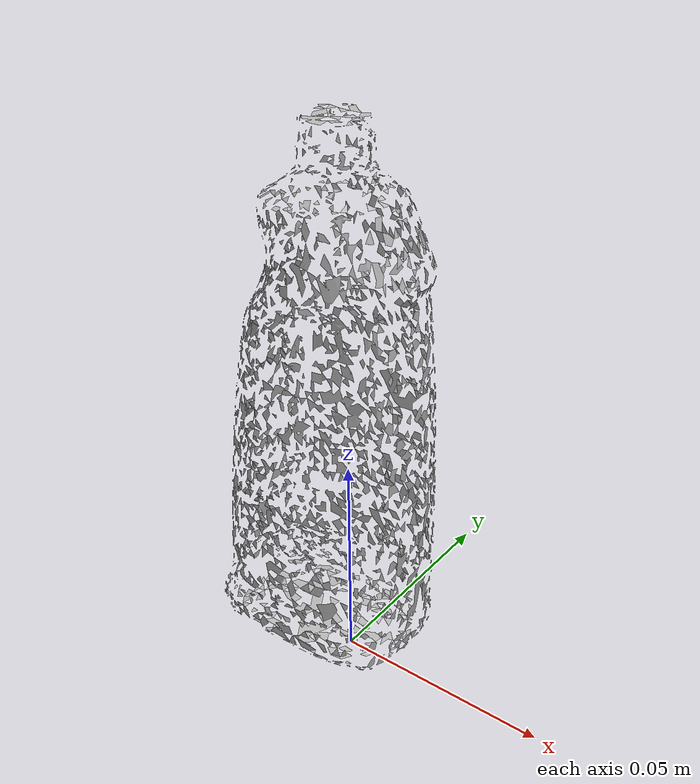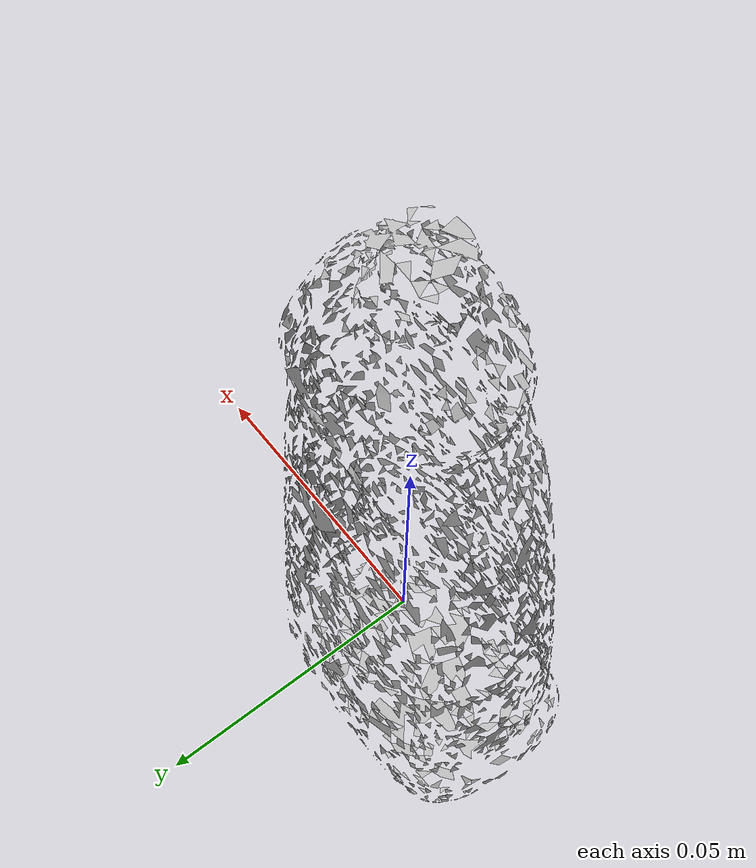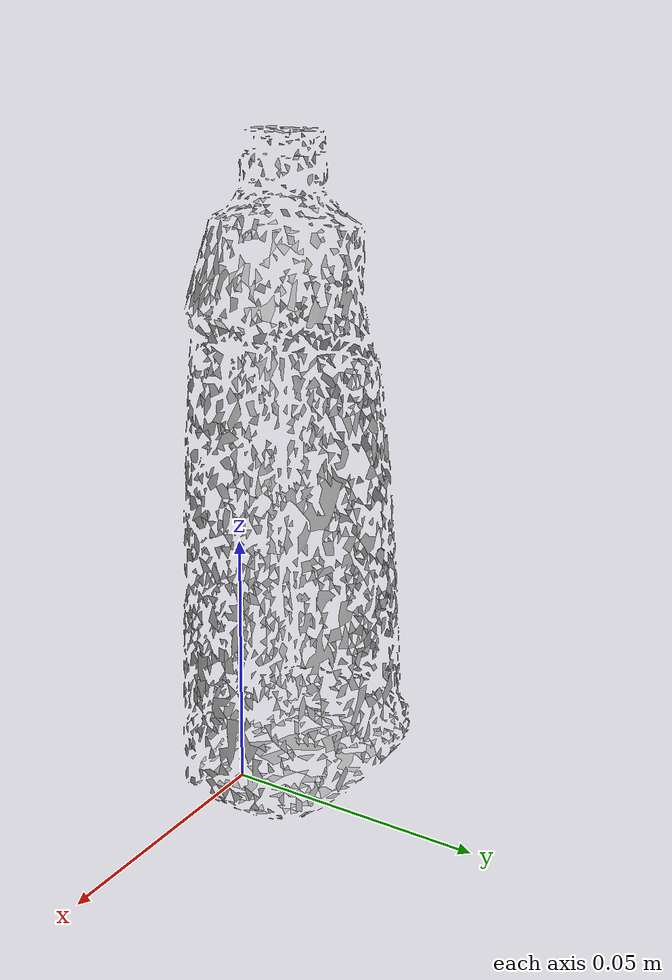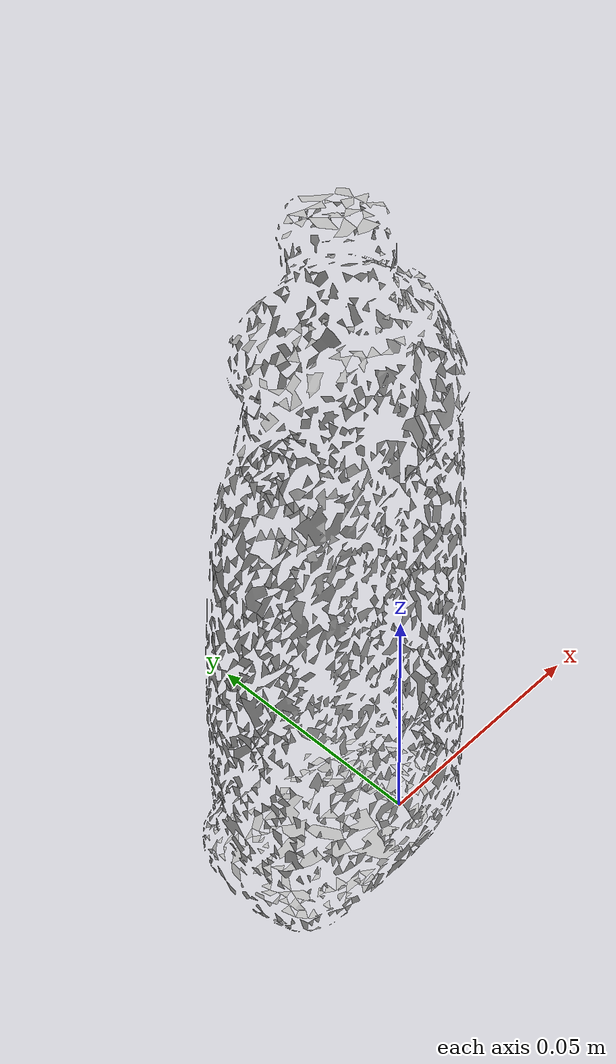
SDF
<?xml version='1.0'?>
<sdf version="1.6">
  <model name="bleach_cleanser">
    <static>false</static>
    <link name="link">
      <inertial>
        <pose>-0.010138949272641098 0.006574369859748879 0.0569796254743377 -3.0710620577865737 0.00011268369926737383 1.560369287349376</pose>
        <mass>0.0009723430520036825</mass>
        <inertia>
          <ixx>1</ixx>
          <ixy>0</ixy>
          <ixz>0</ixz>
          <iyy>1</iyy>
          <iyz>0</iyz>
          <izz>1</izz>
        </inertia>
      </inertial>
      <collision name="collision">
        <geometry>
          <mesh>
            <!-- Use a downsampled mesh for collisions -->
            <uri>model://021_bleach_cleanser/downsampled.obj</uri>
            <scale>0.5 0.5 0.5</scale>
	        </mesh>
        </geometry>
        <surface>
      </surface>
      </collision>
      <visual name="visual">
        <geometry>
          <mesh>
            <uri>model://021_bleach_cleanser/google_16k/textured.obj</uri>
            <scale>0.5 0.5 0.5</scale>
	        </mesh>
        </geometry>
        <material>
          <script>
            <uri>model://021_bleach_cleanser/bleach_cleanser.material</uri>
            <name>bleach_cleanser</name>
          </script>
        </material>
      </visual>
    </link>
  </model>
</sdf>
